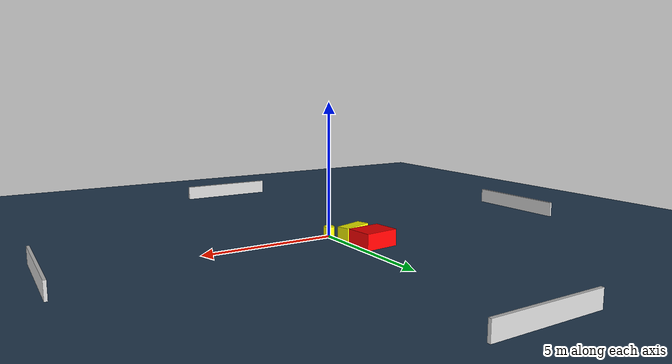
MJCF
<?xml version="1.0" ?>
<mujoco model="generated_environment">
  <option timestep="0.01" integrator="RK4" cone="elliptic"/>
  <default>
    <geom density="1"/>
  </default>
  <asset>
    <texture builtin="gradient" height="3072" name="skybox" rgb1="0.3 0.5 0.7" rgb2="0 0 0" type="skybox" width="512"/>
    <texture builtin="checker" height="300" name="groundplane" rgb1="0.2 0.3 0.4" rgb2="0.1 0.2 0.3" type="2d" width="300"/>
    <material name="groundplane" reflectance="0.2" texrepeat="5 5" texture="groundplane"/>
  </asset>
  <worldbody>
    <light dir="0 0 -1" directional="true" pos="0 0 1.5"/>
    <geom condim="3" friction="0.5 0.005 0.001" material="groundplane" name="floor" pos="0 0 0" size="0 0 0.05" type="plane"/>
    <body name="walls">
      <geom name="wall_1" condim="4" pos="-10.0 0.0 0.3" rgba="0.800000011920929 0.800000011920929 0.800000011920929 1.0" size="0.05 2.0 0.3" type="box"/>
      <geom name="wall_2" condim="4" pos="10.0 0.0 0.3" rgba="0.800000011920929 0.800000011920929 0.800000011920929 1.0" size="0.05 2.0 0.3" type="box"/>
      <geom name="wall_3" condim="4" pos="0.0 -10.0 0.3" rgba="0.800000011920929 0.800000011920929 0.800000011920929 1.0" size="2.0 0.05 0.3" type="box"/>
      <geom name="wall_4" condim="4" pos="0.0 10.0 0.3" rgba="0.800000011920929 0.800000011920929 0.800000011920929 1.0" size="2.0 0.05 0.3" type="box"/>
    </body>
    <body name="robot">
      <joint name="joint_x" type="slide" pos="0 0 0" axis="1 0 0"/>
      <joint name="joint_y" type="slide" pos="0 0 0" axis="0 1 0"/>
      <geom name="robot" type="cylinder" pos="0.0 0.0 0.2" size="0.2 0.2 0.0" mass="5.0" friction="1.0 0.005 0.0001" condim="4" rgba="1.0 1.0 0.0 1.0"/>
    </body>
    <body name="obstacle_1_movable">
      <geom name="obstacle_1_movable" condim="4" pos="-0.4057784190502648 0.994191635238641 0.3" euler="0 0 197.21491749545223" friction="0.0 0.005 0.001" rgba="1.0 1.0 0.0 1.0" size="0.5878921615353805 0.23392989641241058 0.3" type="box" mass="0.1"/>
      <joint type="free"/>
    </body>
    <body name="obstacle_2_static">
      <geom name="obstacle_2_static" condim="4" pos="-0.6515759995359458 1.8813311618071962 0.3" euler="0 0 5.775150666911211" friction="0.0 0.005 0.001" rgba="1.0 0.0 0.0 1.0" size="0.6618889391407037 0.5111226077401698 0.3" type="box"/>
    </body>
  </worldbody>
  <actuator>
    <motor name="actuator_x" joint="joint_x" gear="1" ctrlrange="-1 1"/>
    <motor name="actuator_y" joint="joint_y" gear="1" ctrlrange="-1 1"/>
  </actuator>
</mujoco>
